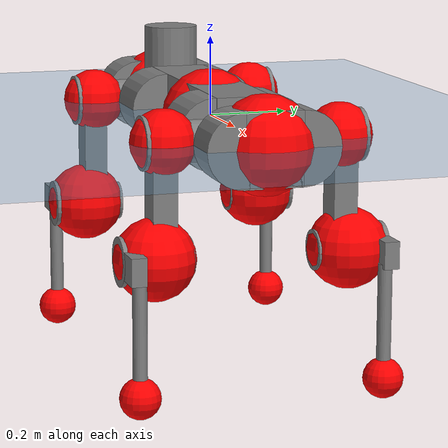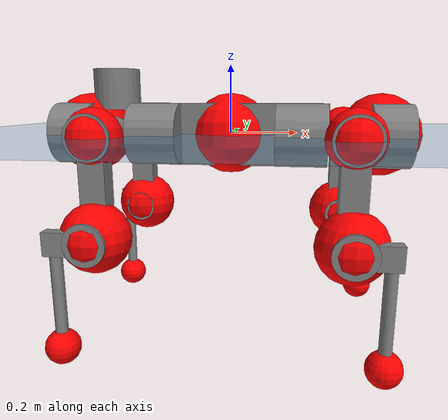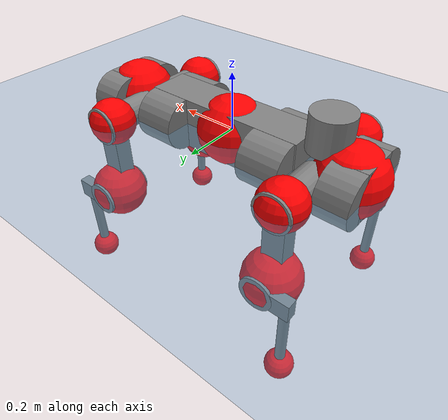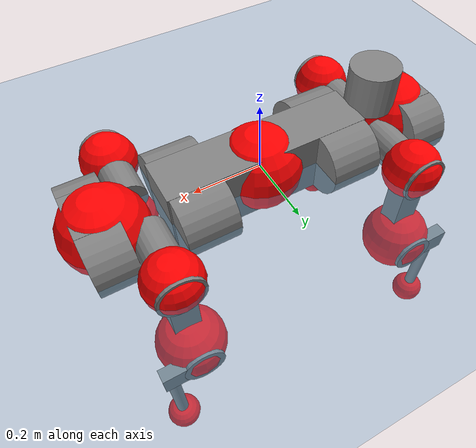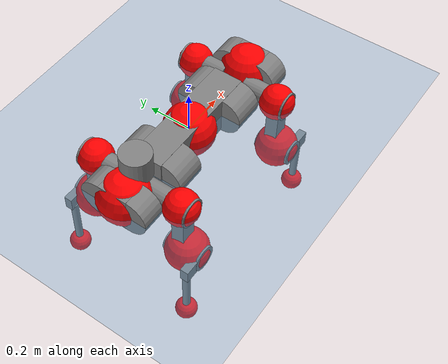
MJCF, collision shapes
<mujoco model="anymal_c">
  <compiler angle="radian" assetdir="assets" balanceinertia="true" inertiafromgeom="false"/>

  <option timestep="0.005" density="1.2" viscosity="2e-05"/>

  <size nkey="1"/>

  <visual>
    <quality shadowsize="8192"/>
    <map shadowclip="0.5"/>
  </visual>

  <default>
    <default class="/">
      <material specular="0" shininess="0.25"/>
      <geom contype="0" conaffinity="0" group="1" solref="-1000 -80"/>
      <site size="0.01 0.005 0.005" group="5"/>
      <general forcelimited="true" forcerange="-80 80" biastype="affine" gainprm="80" biasprm="0 -80 -2"/>
      <default class="anymal_c">
        <joint armature="0.01" damping="0.01" frictionloss="0.1"/>
        <default class="visual">
          <geom type="mesh" group="2"/>
          <default class="visual_zflip"/>
        </default>
        <default class="collision">
          <geom type="cylinder" group="3"/>
          <default class="foot">
            <geom size="0.03 0 0" type="sphere" condim="6" priority="1" friction="0.8 0.02 0.01" solimp="0.015 1 0.03"/>
          </default>
        </default>
      </default>
      <default class="reward_collision_sphere">
        <geom group="5" rgba="1 0 0 1"/>
      </default>
    </default>
  </default>

  <asset>
    <texture type="skybox" colorspace="auto" name="//unnamed_texture_0" builtin="gradient" rgb1="0.95 0.95 0.95" rgb2="0.95 0.95 0.95" width="100" height="600"/>
    <texture type="2d" colorspace="auto" name="texplane" builtin="checker" rgb1="0.345 0.575 0.748" rgb2="0.345 0.575 0.748" markrgb="1 1 1" width="512" height="512"/>
    <texture type="2d" colorspace="linear" name="base" file="base.png"/>
    <texture type="2d" colorspace="linear" name="top_shell" file="top_shell.png"/>
    <texture type="2d" colorspace="linear" name="bottom_shell" file="bottom_shell.png"/>
    <texture type="2d" colorspace="linear" name="remote" file="remote.png"/>
    <texture type="2d" colorspace="linear" name="hatch" file="hatch.png"/>
    <texture type="2d" colorspace="linear" name="handle" file="handle.png"/>
    <texture type="2d" colorspace="linear" name="face" file="face.png"/>
    <texture type="2d" colorspace="linear" name="battery" file="battery.png"/>
    <texture type="2d" colorspace="linear" name="lidar_cage" file="lidar_cage.png"/>
    <texture type="2d" colorspace="linear" name="depth_camera" file="depth_camera.png"/>
    <texture type="2d" colorspace="linear" name="wide_angle_camera" file="wide_angle_camera.png"/>
    <texture type="2d" colorspace="linear" name="lidar" file="lidar.png"/>
    <texture type="2d" colorspace="linear" name="drive" file="drive.png"/>
    <texture type="2d" colorspace="linear" name="hip_l" file="hip_l.png"/>
    <texture type="2d" colorspace="linear" name="shank_l" file="shank_l.png"/>
    <texture type="2d" colorspace="linear" name="foot" file="foot.png"/>
    <texture type="2d" colorspace="linear" name="thigh" file="thigh.png"/>
    <texture type="2d" colorspace="linear" name="shank_r" file="shank_r.png"/>
    <texture type="2d" colorspace="linear" name="hip_r" file="hip_r.png"/>
    <material name="MatPlane" class="/" texture="texplane" texuniform="true" texrepeat="2 2" specular="0.9" shininess="0.5"/>
    <material name="black_plastic" class="/" rgba="0.007 0.007 0.007 1"/>
    <material name="green" class="/" rgba="0.052 0.178 0.033 1"/>
    <material name="red" class="/" rgba="0.178 0.006 0.005 1"/>
    <material name="yellow" class="/" rgba="0.178 0.119 0.006 1"/>
    <material name="lwl" class="/" rgba="0.8 0.8 0.8 1"/>
    <material name="base" class="/" texture="base"/>
    <material name="top_shell" class="/" texture="top_shell"/>
    <material name="bottom_shell" class="/" texture="bottom_shell"/>
    <material name="hip_l" class="/" texture="hip_l"/>
    <material name="thigh" class="/" texture="thigh"/>
    <material name="shank_l" class="/" texture="shank_l"/>
    <material name="foot" class="/" texture="foot"/>
    <material name="hip_r" class="/" texture="hip_r"/>
    <material name="shank" class="/" texture="shank_r"/>
    <material name="hatch" class="/" texture="hatch"/>
    <material name="remote" class="/" texture="remote"/>
    <material name="handle" class="/" texture="handle"/>
    <material name="face" class="/" texture="face"/>
    <material name="depth_camera" class="/" texture="depth_camera"/>
    <material name="wide_angle_camera" class="/" texture="wide_angle_camera"/>
    <material name="battery" class="/" texture="battery"/>
    <material name="lidar_cage" class="/" texture="lidar_cage"/>
    <material name="lidar" class="/" texture="lidar"/>
    <material name="drive" class="/" texture="drive"/>
    <mesh name="base_0" class="/" file="base_0.obj"/>
    <mesh name="base_1" class="/" file="base_1.obj"/>
    <mesh name="base_2" class="/" file="base_2.obj"/>
    <mesh name="base_3" class="/" file="base_3.obj"/>
    <mesh name="base_4" class="/" file="base_4.obj"/>
    <mesh name="base_5" class="/" file="base_5.obj"/>
    <mesh name="top_shell" class="/" file="top_shell.obj"/>
    <mesh name="bottom_shell" class="/" file="bottom_shell.obj"/>
    <mesh name="remote" class="/" file="remote.obj"/>
    <mesh name="handle" class="/" file="handle.obj"/>
    <mesh name="face" class="/" file="face.obj"/>
    <mesh name="wide_angle_camera" class="/" file="wide_angle_camera.obj"/>
    <mesh name="depth_camera" class="/" file="depth_camera.obj"/>
    <mesh name="battery" class="/" file="battery.obj"/>
    <mesh name="lidar_cage" class="/" file="lidar_cage.obj"/>
    <mesh name="lidar" class="/" file="lidar.obj"/>
    <mesh name="drive" class="/" file="drive.obj"/>
    <mesh name="hip_l" class="/" file="hip_l.obj"/>
    <mesh name="thigh" class="/" file="thigh.obj"/>
    <mesh name="shank_l" class="/" file="shank_l.obj"/>
    <mesh name="foot" class="/" file="foot.obj"/>
    <mesh name="hip_r" class="/" file="hip_r.obj"/>
    <mesh name="hatch" class="/" file="hatch.obj"/>
    <mesh name="shank_r" class="/" file="shank_r.obj"/>
  </asset>

  <worldbody>
    <geom name="floor" class="/" size="100 100 0.125" type="plane" group="0" material="MatPlane"/>
    <light name="toplight_shadow" class="/" pos="0 0 5" dir="0.0990148 0.0990148 -0.990148" type="directional" ambient="0.04 0.04 0.04" diffuse="0.55 0.55 0.55" specular="0.12 0.12 0.12"/>
    <light name="toplight_fill" class="/" pos="0 0 5" dir="0.0990148 0.0990148 -0.990148" type="directional" castshadow="false" ambient="0.04 0.04 0.04" diffuse="0.3 0.3 0.3" specular="0.08 0.08 0.08"/>
    <body name="trunk" childclass="anymal_c" pos="0.000507757 -0.00257246 -0.0020503" quat="0.999999 -0.000149774 0.00122855 -0.000317887">
      <inertial pos="-0.00058172 4.23294e-05 0.0502644" quat="0.511201 0.498725 0.492934 0.496955" mass="20.0919" diaginertia="0.593085 0.816432 0.203401"/>
      <joint name="//unnamed_joint_0" type="free" armature="0" damping="0" frictionloss="0"/>
      <geom name="//unnamed_geom_1" class="visual" material="green" mesh="base_0"/>
      <geom name="//unnamed_geom_2" class="visual" material="yellow" mesh="base_1"/>
      <geom name="//unnamed_geom_3" class="visual" material="red" mesh="base_2"/>
      <geom name="//unnamed_geom_4" class="visual" material="black_plastic" mesh="base_3"/>
      <geom name="//unnamed_geom_5" class="visual" material="lwl" mesh="base_4"/>
      <geom name="//unnamed_geom_6" class="visual" material="base" mesh="base_5"/>
      <geom name="trunk_1" class="collision" size="0.291661 0.0704008 0.0905154" type="box"/>
      <geom name="trunk_2" class="collision" size="0.0905154 0.0729152" pos="0.21408 0.0735707 0" quat="0.707107 0 0.707107 0"/>
      <geom name="trunk_3" class="collision" size="0.0905154 0.0729152" pos="-0.21408 0.0735707 0" quat="0.707107 0 0.707107 0"/>
      <geom name="trunk_4" class="collision" size="0.0905154 0.0729152" pos="0.21408 -0.0735707 0" quat="0.707107 0 0.707107 0"/>
      <geom name="trunk_5" class="collision" size="0.0905154 0.0729152" pos="-0.21408 -0.0735707 0" quat="0.707107 0 0.707107 0"/>
      <geom name="//unnamed_geom_12" class="visual" material="top_shell" mesh="top_shell"/>
      <geom name="//unnamed_geom_13" class="visual" material="bottom_shell" mesh="bottom_shell"/>
      <geom name="//unnamed_geom_14" class="visual" material="remote" mesh="remote"/>
      <geom name="//unnamed_geom_15" class="visual" material="handle" mesh="handle"/>
      <geom name="//unnamed_geom_16" class="visual" pos="0.407983 0 0" quat="1 0 0 0" material="face" mesh="face"/>
      <geom name="trunk_6" class="collision" size="0.0553149 0.0704008 0.0905154" pos="0.462118 0 0" type="box"/>
      <geom name="//unnamed_geom_18" class="collision" size="0.0905154 0.0553149" pos="0.462118 0.0735707 0" quat="0.707107 0 0.707107 0"/>
      <geom name="//unnamed_geom_19" class="collision" size="0.0905154 0.0553149" pos="0.462118 -0.0735707 0" quat="0.707107 0 0.707107 0"/>
      <geom name="//unnamed_geom_20" class="visual" pos="0.454391 0 -0.0286531" quat="0.965926 0 0.258819 0" material="depth_camera" mesh="depth_camera"/>
      <geom name="//unnamed_geom_21" class="visual" pos="0.504934 0 0.0146989" material="wide_angle_camera" mesh="wide_angle_camera"/>
      <geom name="//unnamed_geom_22" class="visual_zflip" pos="-0.407983 0 0" quat="0 0 0 1" material="face" mesh="face"/>
      <geom name="trunk_7" class="collision" size="0.0553149 0.0704008 0.0905154" pos="-0.462118 0 0" quat="0 0 0 1" type="box"/>
      <geom name="//unnamed_geom_24" class="collision" size="0.0905154 0.0553149" pos="-0.462118 -0.0735707 0" quat="0 -0.707107 0 0.707107"/>
      <geom name="//unnamed_geom_25" class="collision" size="0.0905154 0.0553149" pos="-0.462118 0.0735707 0" quat="0 -0.707107 0 0.707107"/>
      <geom name="//unnamed_geom_26" class="visual" pos="-0.454391 0 -0.0286531" quat="0 -0.258819 0 0.965926" material="depth_camera" mesh="depth_camera"/>
      <geom name="//unnamed_geom_27" class="visual_zflip" pos="-0.504934 0 0.0146989" quat="0 0 0 1" material="wide_angle_camera" mesh="wide_angle_camera"/>
      <geom name="//unnamed_geom_28" class="visual" material="battery" mesh="battery"/>
      <geom name="//unnamed_geom_29" class="visual" pos="0 0.0812359 0.0285421" quat="0.683013 -0.183013 0.183013 0.683013" material="depth_camera" mesh="depth_camera"/>
      <geom name="//unnamed_geom_30" class="visual" pos="0 -0.0812359 0.0285421" quat="0.683013 0.183013 0.183013 -0.683013" material="depth_camera" mesh="depth_camera"/>
      <geom name="//unnamed_geom_31" class="visual" pos="-0.358277 0 0.072169" quat="1 0 0 0" material="lidar_cage" mesh="lidar_cage"/>
      <geom name="trunk_8" class="collision" size="0.0704008 0.0603436" pos="-0.358277 0 0.131082"/>
      <geom name="//unnamed_geom_33" class="visual" pos="-0.358277 2.62179e-05 0.139625" quat="0.707107 0 0 -0.707107" material="lidar" mesh="lidar"/>
      <geom name="//unnamed_geom_34" class="visual" pos="0.295185 0.109281 1.19231e-09" quat="0.258819 0.965926 0 0" material="drive" mesh="drive"/>
      <geom name="//unnamed_geom_35" class="visual" pos="0.295185 -0.109281 -1.19231e-09" quat="0.258819 -0.965926 0 0" material="drive" mesh="drive"/>
      <geom name="//unnamed_geom_36" class="visual" pos="-0.295185 0.109281 -1.19231e-09" quat="0 0 0.965926 -0.258819" material="drive" mesh="drive"/>
      <geom name="//unnamed_geom_37" class="visual" pos="-0.295185 -0.109281 1.19231e-09" quat="0 0 -0.965926 -0.258819" material="drive" mesh="drive"/>
      <geom name="//unnamed_geom_38" class="visual" pos="0.114176 0 0.0716781" quat="1 0 0 0" material="hatch" mesh="hatch"/>
      <geom name="//unnamed_geom_39" class="reward_collision_sphere" size="0.120687"/>
      <geom name="//unnamed_geom_40" class="reward_collision_sphere" size="0.120687" pos="0.442925 0 0"/>
      <geom name="//unnamed_geom_41" class="reward_collision_sphere" size="0.120687" pos="-0.442925 0 0"/>
      <site name="imu" pos="0.247678 0.00384832 0.0404948" size="0.0100573"/>
      <camera name="track" pos="0 -2.10202 0" quat="0.707107 0.707107 0 0" mode="trackcom"/>
      <camera name="ego_camera" pos="0.442925 0 -0.0392757" quat="-0.5 -0.5 0.5 0.5"/>
      <body name="LF_HIP" pos="0.295107 0.110367 0.00186849" quat="0.258862 0.965914 0.000241096 0.000655876">
        <inertial pos="0.0560586 -0.0176679 -0.00772191" quat="-0.130815 0.711261 -0.132468 0.677825" mass="2.83348" diaginertia="0.00554024 0.00616343 0.00307788"/>
        <joint name="LF_HAA" pos="0 0 0" axis="0.999882 0.0153561 0.000527334" stiffness="0.00226561" range="-0.775279 0.475462" armature="0.0105457" damping="0.00422454" frictionloss="0.101221"/>
        <geom name="//unnamed_geom_42" class="visual" pos="0 7.01384e-05 -1.15202e-05" quat="0.258819 -0.965926 0 0" material="hip_l" mesh="hip_l"/>
        <geom name="//unnamed_geom_43" class="visual" pos="0.0589582 -0.0722945 -0.041228" quat="0.183013 -0.683013 0.683013 0.183013" material="drive" mesh="drive"/>
        <geom name="//unnamed_geom_44" class="collision" size="0.0502863 0.0704008" pos="0.0589582 -0.0125699 -0.00677996" quat="-0.353553 -0.612372 0.612372 -0.353553"/>
        <body name="LF_THIGH" pos="0.0609275 -0.0735116 -0.0388771" quat="0.182994 -0.683134 0.682913 0.182953">
          <inertial pos="0.030893 -0.000269381 -0.241582" quat="0.992587 0.00194225 -0.0908322 0.0807217" mass="3.23051" diaginertia="0.0274988 0.0383597 0.00382756"/>
          <joint name="LF_HFE" pos="0 0 0" axis="0.999925 0.00207663 0.0120937" stiffness="0.0142377" range="-3.19324 3.1256" armature="0.0100001" damping="0.00887804" frictionloss="0.0865267"/>
          <geom name="//unnamed_geom_45" class="visual" pos="-0.00132774 -2.09221e-06 0" quat="0.707107 0 0 -0.707107" material="thigh" mesh="thigh"/>
          <geom name="//unnamed_geom_46" class="collision" size="0.0653722 0.040229" pos="0.0393711 0 0" quat="0.5 0.5 -0.5 -0.5"/>
          <geom name="//unnamed_geom_47" class="collision" size="0.0377147 0.0301718 0.142123" pos="0.0295283 0 -0.138755" quat="0.707107 0 0 -0.707107" type="box"/>
          <geom name="//unnamed_geom_48" class="visual" pos="0.098723 0 -0.279839" quat="1 0 0 0" material="drive" mesh="drive"/>
          <geom name="//unnamed_geom_49" class="collision" size="0.0502863 0.0704008" pos="0.0298236 0 -0.279839" quat="0.707107 0 0.707107 0"/>
          <geom name="//unnamed_geom_50" class="reward_collision_sphere" size="0.0804581" pos="0.0246069 0 0"/>
          <body name="LF_SHANK" pos="0.0992477 0.000501892 -0.279664" quat="1 6.02038e-05 0.000161768 -0.000342854">
            <inertial pos="0.00421312 -0.0670165 -0.0810913" quat="0.992205 -0.123302 0.00392422 -0.0176044" mass="0.594935" diaginertia="0.00907397 0.0115518 0.000994154"/>
            <joint name="LF_KFE" pos="0 0 0" axis="0.999979 -0.00213925 0.00608381" stiffness="0.00882344" range="-3.1465 3.17929" armature="0.00853946" damping="0.000577639" frictionloss="0.111511"/>
            <geom name="//unnamed_geom_51" class="visual" pos="-0.000432947 -0.0023085 0" quat="0.707107 0 0 -0.707107" material="shank_l" mesh="shank_l"/>
            <geom name="LF_kfe_act" class="collision" size="0.0603436 0.0201145" pos="0.0196855 0 0" quat="0.5 0.5 -0.5 -0.5"/>
            <geom name="//unnamed_geom_53" class="collision" size="0.0578283 0.0339433 0.0191088" pos="0.0196855 -0.0604321 0" quat="0.5 0.5 -0.5 -0.5" type="box"/>
            <geom name="//unnamed_geom_54" class="visual" pos="0.0128449 -0.0931803 -0.33185" quat="0.382683 0 0 -0.92388" material="foot" mesh="foot"/>
            <geom name="LF_calf" class="collision" size="0.0176002 0.142061" pos="0.0128448 -0.0924364 -0.165925" quat="0.707107 0 0 -0.707107"/>
            <geom name="LF_foot" class="foot" size="0.0276931" pos="0.0128448 -0.0924364 -0.309757" quat="0.707107 0 0 -0.707107"/>
            <geom name="//unnamed_geom_57" class="reward_collision_sphere" size="0.100573" pos="-0.0492138 0 0"/>
            <geom name="//unnamed_geom_58" class="reward_collision_sphere" size="0.0502863" pos="0.0128448 -0.0924364 -0.309757"/>
            <site name="LF_foot" class="foot" pos="0.0128448 -0.0924364 -0.309757" quat="0.707107 0 0 -0.707107" size="0.0100573"/>
          </body>
        </body>
      </body>
      <body name="RF_HIP" pos="0.295508 -0.112528 0.00288219" quat="0.258434 -0.966029 -0.00071476 -0.000163103">
        <inertial pos="0.0559702 0.019223 -0.0107737" quat="0.136094 0.680883 0.123635 0.708937" mass="2.7189" diaginertia="0.00520868 0.00631846 0.00306645"/>
        <joint name="RF_HAA" pos="0 0 0" axis="0.999876 -0.014812 -0.00525261" stiffness="0.00356599" range="-0.507375 0.750104" armature="0.00871508" damping="0.00262727" frictionloss="0.109767"/>
        <geom name="//unnamed_geom_59" class="visual" pos="0 -7.01378e-05 -1.15201e-05" quat="0.258819 0.965926 0 0" material="hip_r" mesh="hip_r"/>
        <geom name="//unnamed_geom_60" class="visual" pos="0.0589582 0.0722945 -0.041228" quat="0.183013 0.683013 0.683013 -0.183013" material="drive" mesh="drive"/>
        <geom name="//unnamed_geom_61" class="collision" size="0.0502863 0.0704008" pos="0.0589582 0.0125699 -0.00677996" quat="-0.353553 0.612372 0.612372 0.353553"/>
        <body name="RF_THIGH" pos="0.0566709 0.0736588 -0.0412458" quat="0.183396 0.683323 0.682693 -0.182662">
          <inertial pos="0.0332204 -0.00272057 -0.240498" quat="0.993826 -0.0116906 -0.0754351 0.0805162" mass="3.18135" diaginertia="0.0269133 0.0382156 0.00380684"/>
          <joint name="RF_HFE" pos="0 0 0" axis="0.999974 0.00227974 -0.00689126" range="-3.12677 3.18591" armature="0.00956419" damping="0.0158482" frictionloss="0.0869527"/>
          <geom name="//unnamed_geom_62" class="visual" pos="-0.00132774 -2.09221e-06 0" quat="0.707107 0 0 -0.707107" material="thigh" mesh="thigh"/>
          <geom name="//unnamed_geom_63" class="collision" size="0.0653722 0.040229" pos="0.0393711 0 0" quat="0.5 0.5 0.5 0.5"/>
          <geom name="//unnamed_geom_64" class="collision" size="0.0377147 0.0301718 0.142123" pos="0.0295283 0 -0.138755" quat="0.707107 0 0 0.707107" type="box"/>
          <geom name="//unnamed_geom_65" class="visual" pos="0.098723 0 -0.279839" quat="1 0 0 0" material="drive" mesh="drive"/>
          <geom name="//unnamed_geom_66" class="collision" size="0.0502863 0.0704008" pos="0.0298236 0 -0.279839" quat="0.707107 0 0.707107 0"/>
          <geom name="//unnamed_geom_67" class="reward_collision_sphere" size="0.0804581" pos="0.0246069 0 0"/>
          <body name="RF_SHANK" pos="0.0961231 0.0025245 -0.279976" quat="1 -0.000106101 0.000386007 -0.000333612">
            <inertial pos="0.00279245 0.0669803 -0.0800238" quat="0.992978 0.116905 -0.00958962 0.0153664" mass="0.596884" diaginertia="0.00906788 0.0121731 0.000983815"/>
            <joint name="RF_KFE" pos="0 0 0" axis="0.999999 0.0008905 0.000862875" range="-3.0824 3.16967" armature="0.00997588" damping="0.00705166" frictionloss="0.0883523"/>
            <geom name="//unnamed_geom_68" class="visual" pos="-0.000432945 0.00230849 0" quat="0.707107 0 0 0.707107" material="shank" mesh="shank_r"/>
            <geom name="RF_kfe_act" class="collision" size="0.0603436 0.0201145" pos="0.0196855 0 0" quat="0.5 0.5 0.5 0.5"/>
            <geom name="//unnamed_geom_70" class="collision" size="0.0578283 0.0339433 0.0191088" pos="0.0196855 0.0604321 0" quat="0.5 0.5 0.5 0.5" type="box"/>
            <geom name="//unnamed_geom_71" class="visual" pos="0.0128447 0.0931803 -0.33185" quat="0.382683 0 0 0.92388" material="foot" mesh="foot"/>
            <geom name="RF_calf" class="collision" size="0.0176002 0.142061" pos="0.0128448 0.0924364 -0.165925" quat="0.707107 0 0 0.707107"/>
            <geom name="RF_foot" class="foot" size="0.0310937" pos="0.0128448 0.0924364 -0.309757" quat="0.707107 0 0 0.707107"/>
            <geom name="//unnamed_geom_74" class="reward_collision_sphere" size="0.100573" pos="-0.0492138 0 0"/>
            <geom name="//unnamed_geom_75" class="reward_collision_sphere" size="0.0502863" pos="0.0128448 0.0924364 -0.309757"/>
            <site name="RF_foot" class="foot" pos="0.0128448 0.0924364 -0.309757" quat="0.707107 0 0 0.707107" size="0.0100573"/>
          </body>
        </body>
      </body>
      <body name="LH_HIP" pos="-0.294617 0.112579 0.00322746" quat="0.000173739 -0.000206369 0.966065 -0.258298">
        <inertial pos="0.0567645 0.0145325 -0.00553223" quat="0.141277 0.679992 0.127233 0.708141" mass="2.75432" diaginertia="0.00518685 0.00589513 0.00300916"/>
        <joint name="LH_HAA" pos="0 0 0" axis="0.999941 0.00564164 0.00929846" stiffness="0.00294799" range="-0.460609 0.677545" armature="0.00943751" damping="0.0135819" frictionloss="0.111186"/>
        <geom name="//unnamed_geom_76" class="visual" pos="0 -7.01378e-05 -1.15201e-05" quat="-0.258819 -0.965926 0 0" material="hip_r" mesh="hip_r"/>
        <geom name="//unnamed_geom_77" class="visual" pos="0.0589582 0.0722945 -0.041228" quat="0.183013 0.683013 0.683013 -0.183013" material="drive" mesh="drive"/>
        <geom name="//unnamed_geom_78" class="collision" size="0.0502863 0.0704008" pos="0.0589582 0.0125699 -0.00677996" quat="-0.353553 0.612372 0.612372 0.353553"/>
        <body name="LH_THIGH" pos="0.0584547 0.0732456 -0.0412532" quat="0.182838 0.683141 0.682998 -0.182763">
          <inertial pos="0.0293881 -0.00081515 -0.238696" quat="0.993114 -0.00670832 -0.0710359 0.0929183" mass="3.12316" diaginertia="0.0269859 0.0397061 0.00387858"/>
          <joint name="LH_HFE" pos="0 0 0" axis="0.999996 0.00103288 0.0026041" range="-3.14075 3.16096" armature="0.0113402" damping="0.0200015" frictionloss="0.0865147"/>
          <geom name="//unnamed_geom_79" class="visual" pos="-0.00132774 -2.09221e-06 0" quat="0.707107 0 0 -0.707107" material="thigh" mesh="thigh"/>
          <geom name="//unnamed_geom_80" class="collision" size="0.0653722 0.040229" pos="0.0393711 0 0" quat="0.5 0.5 -0.5 -0.5"/>
          <geom name="//unnamed_geom_81" class="collision" size="0.0377147 0.0301718 0.142123" pos="0.0295283 0 -0.138755" quat="0.707107 0 0 -0.707107" type="box"/>
          <geom name="//unnamed_geom_82" class="visual" pos="0.098723 0 -0.279839" quat="1 0 0 0" material="drive" mesh="drive"/>
          <geom name="//unnamed_geom_83" class="collision" size="0.0502863 0.0704008" pos="0.0298236 0 -0.279839" quat="0.707107 0 0.707107 0"/>
          <geom name="//unnamed_geom_84" class="reward_collision_sphere" size="0.0804581" pos="0.0246069 0 0"/>
          <body name="LH_SHANK" pos="0.0964803 0.00043665 -0.276929" quat="0.999999 0.000540813 -0.00023806 -0.00117346">
            <inertial pos="0.00544703 0.0660473 -0.0784273" quat="0.993039 0.114056 -0.00301145 0.029254" mass="0.586024" diaginertia="0.0091495 0.0115581 0.000999747"/>
            <joint name="LH_KFE" pos="0 0 0" axis="1 0.000334898 -0.000935959" stiffness="0.001519" range="-3.14117 3.14756" armature="0.00991181" damping="0.0189769" frictionloss="0.0872345"/>
            <geom name="//unnamed_geom_85" class="visual" pos="-0.000432945 0.00230849 0" quat="-0.707107 0 0 -0.707107" material="shank" mesh="shank_r"/>
            <geom name="LH_kfe_act" class="collision" size="0.0603436 0.0201145" pos="0.0196855 0 0" quat="0.5 0.5 -0.5 -0.5"/>
            <geom name="//unnamed_geom_87" class="collision" size="0.0578283 0.0339433 0.0191088" pos="0.0196855 0.0604321 0" quat="0.5 0.5 -0.5 -0.5" type="box"/>
            <geom name="//unnamed_geom_88" class="visual" pos="0.0128447 0.0931803 -0.33185" quat="-0.382683 0 0 -0.92388" material="foot" mesh="foot"/>
            <geom name="LH_calf" class="collision" size="0.0176002 0.142061" pos="0.0128448 0.0924364 -0.165925" quat="0.707107 0 0 -0.707107"/>
            <geom name="LH_foot" class="foot" size="0.0310973" pos="0.0128448 0.0924364 -0.309757" quat="0.707107 0 0 -0.707107"/>
            <geom name="//unnamed_geom_91" class="reward_collision_sphere" size="0.100573" pos="-0.0492138 0 0"/>
            <geom name="//unnamed_geom_92" class="reward_collision_sphere" size="0.0502863" pos="0.0128448 0.0924364 -0.309757"/>
            <site name="LH_foot" class="foot" pos="0.0128448 0.0924364 -0.309757" quat="0.707107 0 0 -0.707107" size="0.0100573"/>
          </body>
        </body>
      </body>
      <body name="RH_HIP" pos="-0.295016 -0.107048 0.000216741" quat="0.000134483 -0.000214653 -0.965922 -0.258834">
        <inertial pos="0.0548188 -0.018173 -0.00849589" quat="-0.128033 0.710508 -0.134954 0.678656" mass="2.72798" diaginertia="0.005206 0.00624133 0.00286856"/>
        <joint name="RH_HAA" pos="0 0 0" axis="0.999996 0.00268408 0.000787308" stiffness="0.00419557" range="-0.744641 0.542185" armature="0.0104558" damping="0.00736232" frictionloss="0.114306"/>
        <geom name="//unnamed_geom_93" class="visual" pos="0 7.01384e-05 -1.15202e-05" quat="-0.258819 0.965926 0 0" material="hip_l" mesh="hip_l"/>
        <geom name="//unnamed_geom_94" class="visual" pos="0.0589582 -0.0722945 -0.041228" quat="-0.183013 0.683013 -0.683013 -0.183013" material="drive" mesh="drive"/>
        <geom name="//unnamed_geom_95" class="collision" size="0.0502863 0.0704008" pos="0.0589582 -0.0125699 -0.00677996" quat="0.353553 0.612372 -0.612372 0.353553"/>
        <body name="RH_THIGH" pos="0.0562745 -0.0739913 -0.0420238" quat="-0.18368 0.683292 -0.6828 -0.182093">
          <inertial pos="0.0305804 -0.00222897 -0.24013" quat="0.993129 -0.00427071 -0.081171 0.0841923" mass="3.25145" diaginertia="0.0285473 0.0380382 0.0037533"/>
          <joint name="RH_HFE" pos="0 0 0" axis="0.999998 -0.001075 0.0018758" stiffness="0.00555325" range="-3.16038 3.13139" armature="0.0100593" damping="0.0167612" frictionloss="0.10509"/>
          <geom name="//unnamed_geom_96" class="visual" pos="-0.00132774 -2.09221e-06 0" quat="0.707107 0 0 -0.707107" material="thigh" mesh="thigh"/>
          <geom name="//unnamed_geom_97" class="collision" size="0.0653722 0.040229" pos="0.0393711 0 0" quat="0.5 0.5 0.5 0.5"/>
          <geom name="//unnamed_geom_98" class="collision" size="0.0377147 0.0301718 0.142123" pos="0.0295283 0 -0.138755" quat="0.707107 0 0 0.707107" type="box"/>
          <geom name="//unnamed_geom_99" class="visual" pos="0.098723 0 -0.279839" quat="1 0 0 0" material="drive" mesh="drive"/>
          <geom name="//unnamed_geom_100" class="collision" size="0.0502863 0.0704008" pos="0.0298236 0 -0.279839" quat="0.707107 0 0.707107 0"/>
          <geom name="//unnamed_geom_101" class="reward_collision_sphere" size="0.0804581" pos="0.0246069 0 0"/>
          <body name="RH_SHANK" pos="0.10115 0.000698904 -0.278301" quat="1 -0.000106814 7.45834e-05 -4.56339e-05">
            <inertial pos="0.00265413 -0.0637853 -0.0796355" quat="0.992925 -0.11606 -0.00191333 -0.0250447" mass="0.62022" diaginertia="0.0096438 0.0123086 0.00103336"/>
            <joint name="RH_KFE" pos="0 0 0" axis="0.999972 -0.00619803 -0.00415241" stiffness="0.00167196" range="-3.11338 3.19021" armature="0.0102592" damping="0.00693257" frictionloss="0.114696"/>
            <geom name="//unnamed_geom_102" class="visual" pos="-0.000432947 -0.0023085 0" quat="0.707107 0 0 -0.707107" material="shank_l" mesh="shank_l"/>
            <geom name="RH_kfe_act" class="collision" size="0.0603436 0.0201145" pos="0.0196855 0 0" quat="0.5 0.5 0.5 0.5"/>
            <geom name="//unnamed_geom_104" class="collision" size="0.0578283 0.0339433 0.0191088" pos="0.0196855 -0.0604321 0" quat="0.5 0.5 0.5 0.5" type="box"/>
            <geom name="//unnamed_geom_105" class="visual" pos="0.0128449 -0.0931803 -0.33185" quat="0.382683 0 0 -0.92388" material="foot" mesh="foot"/>
            <geom name="RH_calf" class="collision" size="0.0176002 0.142061" pos="0.0128448 -0.0924364 -0.165925" quat="0.707107 0 0 0.707107"/>
            <geom name="RH_foot" class="foot" size="0.029101" pos="0.0128448 -0.0924364 -0.309757" quat="0.707107 0 0 0.707107"/>
            <geom name="//unnamed_geom_108" class="reward_collision_sphere" size="0.100573" pos="-0.0492138 0 0"/>
            <geom name="//unnamed_geom_109" class="reward_collision_sphere" size="0.0502863" pos="0.0128448 -0.0924364 -0.309757"/>
            <site name="RH_foot" class="foot" pos="0.0128448 -0.0924364 -0.309757" quat="0.707107 0 0 0.707107" size="0.0100573"/>
          </body>
        </body>
      </body>
    </body>
  </worldbody>

  <contact>
    <pair class="/" geom1="floor" geom2="LF_foot" name="//unnamed_contact_0"/>
    <pair class="/" geom1="floor" geom2="RF_foot" name="//unnamed_contact_1"/>
    <pair class="/" geom1="floor" geom2="LH_foot" name="//unnamed_contact_2"/>
    <pair class="/" geom1="floor" geom2="RH_foot" name="//unnamed_contact_3"/>
  </contact>

  <actuator>
    <general name="LF_HAA" class="/" joint="LF_HAA" forcerange="-89.9338 89.9338" gainprm="81.6999" biasprm="0 -81.6999 -2.23056"/>
    <general name="LF_HFE" class="/" joint="LF_HFE" forcerange="-79.9019 79.9019" gainprm="81.6999" biasprm="0 -81.6999 -2.23056"/>
    <general name="LF_KFE" class="/" joint="LF_KFE" forcerange="-78.0183 78.0183" gainprm="81.6999" biasprm="0 -81.6999 -2.23056"/>
    <general name="RF_HAA" class="/" joint="RF_HAA" forcerange="-72.2983 72.2983" gainprm="81.6999" biasprm="0 -81.6999 -2.23056"/>
    <general name="RF_HFE" class="/" joint="RF_HFE" forcerange="-80.8245 80.8245" gainprm="81.6999" biasprm="0 -81.6999 -2.23056"/>
    <general name="RF_KFE" class="/" joint="RF_KFE" forcerange="-73.7303 73.7303" gainprm="81.6999" biasprm="0 -81.6999 -2.23056"/>
    <general name="LH_HAA" class="/" joint="LH_HAA" forcerange="-75.6175 75.6175" gainprm="81.6999" biasprm="0 -81.6999 -2.23056"/>
    <general name="LH_HFE" class="/" joint="LH_HFE" forcerange="-79.818 79.818" gainprm="81.6999" biasprm="0 -81.6999 -2.23056"/>
    <general name="LH_KFE" class="/" joint="LH_KFE" forcerange="-88.3375 88.3375" gainprm="81.6999" biasprm="0 -81.6999 -2.23056"/>
    <general name="RH_HAA" class="/" joint="RH_HAA" forcerange="-72.7777 72.7777" gainprm="81.6999" biasprm="0 -81.6999 -2.23056"/>
    <general name="RH_HFE" class="/" joint="RH_HFE" forcerange="-88.6548 88.6548" gainprm="81.6999" biasprm="0 -81.6999 -2.23056"/>
    <general name="RH_KFE" class="/" joint="RH_KFE" forcerange="-83.8214 83.8214" gainprm="81.6999" biasprm="0 -81.6999 -2.23056"/>
  </actuator>

  <sensor>
    <gyro site="imu" name="imu_angular_velocity"/>
    <velocimeter site="imu" name="imu_linear_velocity"/>
    <framelinvel objtype="site" objname="LF_foot" name="LF_foot_global_linear_velocity"/>
    <framelinvel objtype="site" objname="RF_foot" name="RF_foot_global_linear_velocity"/>
    <framelinvel objtype="site" objname="LH_foot" name="LH_foot_global_linear_velocity"/>
    <framelinvel objtype="site" objname="RH_foot" name="RH_foot_global_linear_velocity"/>
  </sensor>

  <keyframe>
    <key name="home" qpos="0 0 0.55 1 0 0 0 0 0.4 -0.8 0 -0.4 0.8 0 -0.4 0.8 0 0.4 -0.8"/>
  </keyframe>
</mujoco>
